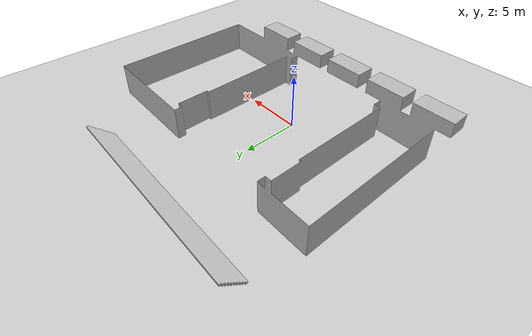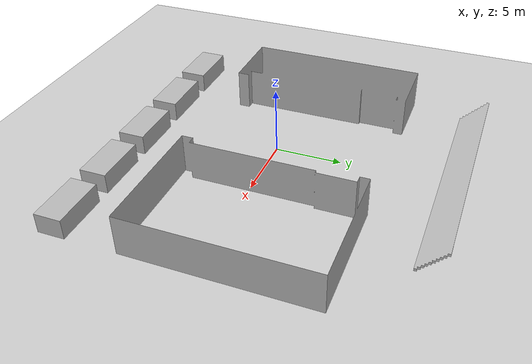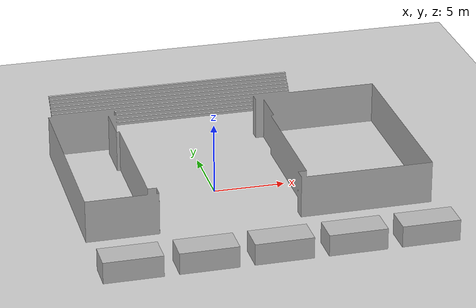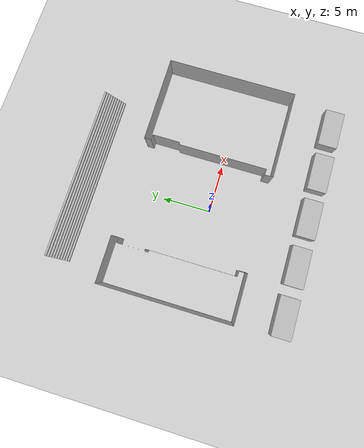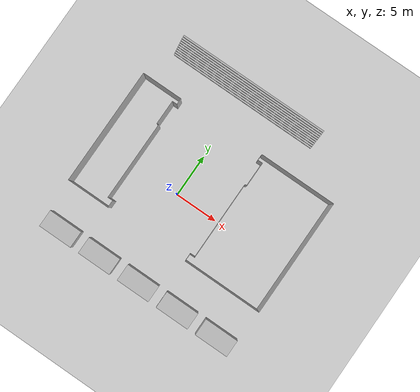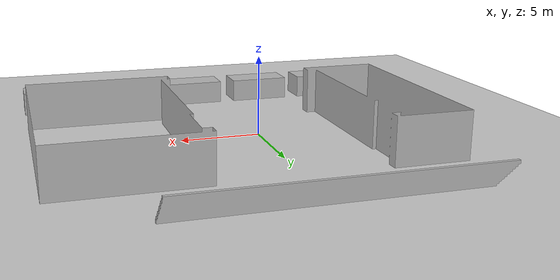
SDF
<?xml version="1.0" ?>
<sdf version="1.4">
  <world name="fme">
    <include>
      <uri>model://ground_plane</uri>
    </include>
    <include>
      <uri>model://sun</uri>
    </include>
    <include>
      <uri>model://fme_opened_door</uri>
      <name>fme_opened_door</name>
      <pose>0 0 0 0 0 0</pose>
    </include>
    <physics type='ode'>
      <max_step_size>0.001</max_step_size>
      <real_time_update_rate>1000</real_time_update_rate>
      <gravity>0 0 -9.8</gravity>
    </physics>
  </world>
</sdf>

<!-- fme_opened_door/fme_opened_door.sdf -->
<sdf version="1.4">
  <model name="fme_opened_door">
    <static>true</static>
    <link name="link">
      <pose>0 0 0 0 0 0</pose>
      <collision name="collision">
        <geometry>
          <mesh>
            <uri>model://fme_opened_door/meshes/fme_opened_door_no_ground.stl</uri>
            <scale>1 1 1</scale>
          </mesh>
        </geometry>
      </collision>
      <visual name="visual">
        <geometry>
          <mesh>
            <uri>model://fme_opened_door/meshes/fme_opened_door_no_ground.stl</uri>
            <scale>1 1 1</scale>
          </mesh>
        </geometry>
      </visual>
    </link>
  </model>
</sdf>
